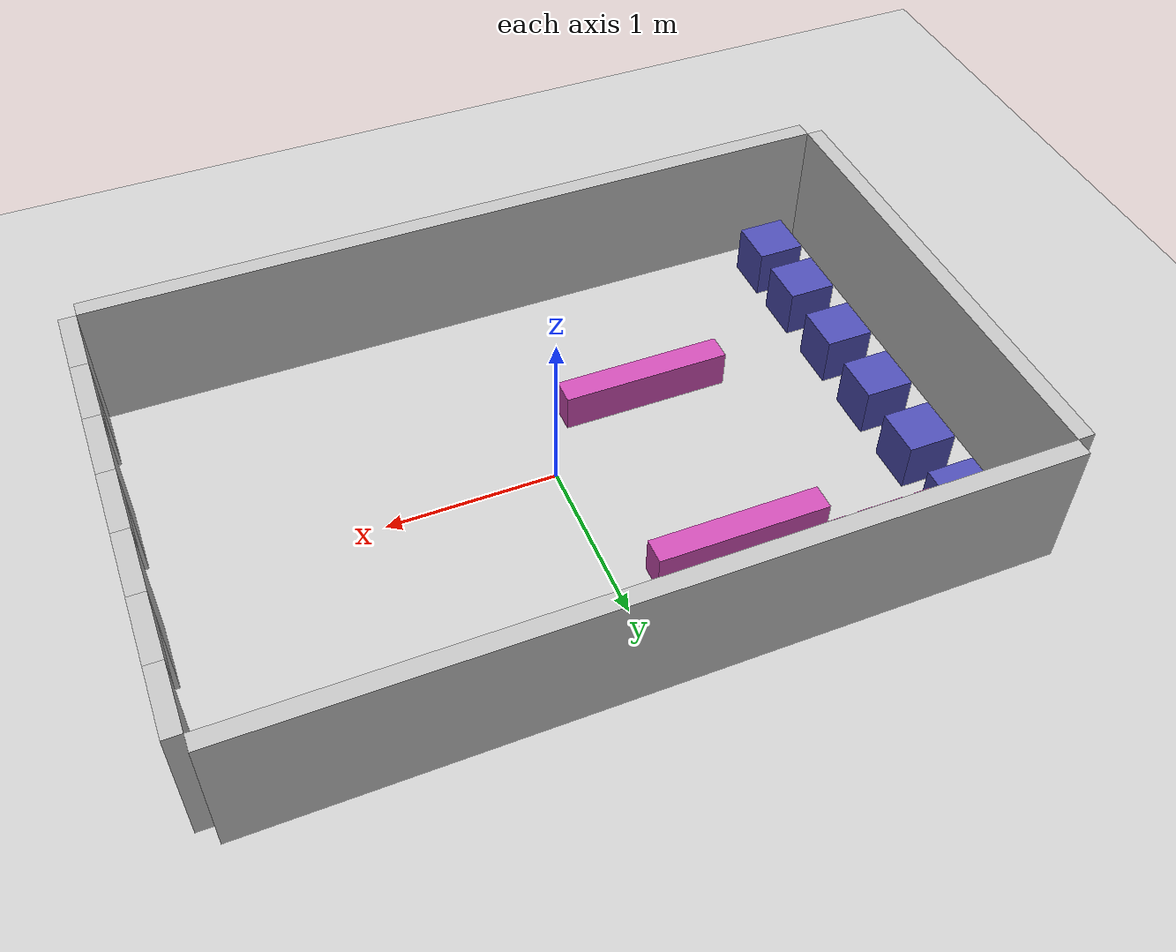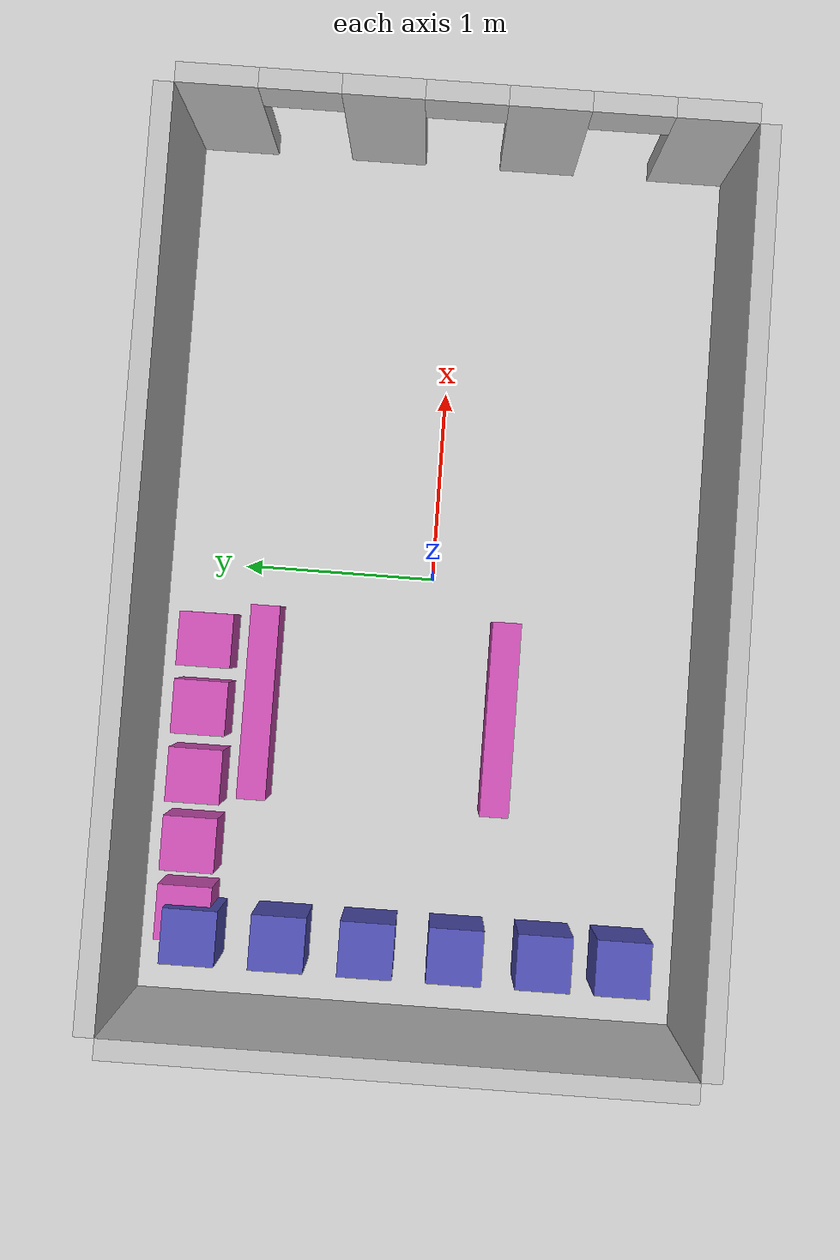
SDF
<sdf version="1.6">
 <world name="puzzlebot_world">
  <include><uri>model://ground_plane</uri></include>
  <include><uri>model://sun</uri></include>
  <physics type="ode">
   <max_step_size>0.005</max_step_size>
   <real_time_factor>1.0</real_time_factor>
   <real_time_update_rate>100</real_time_update_rate>
  </physics>
  <model name="wall_north">
   <static>true</static>
   <pose>0 1.45 0.4 0 0 0</pose>
   <link name="link">
    <collision name="c"><geometry><box><size>4.5 0.1 0.8</size></box></geometry></collision>
    <visual name="v">
     <geometry><box><size>4.5 0.1 0.8</size></box></geometry>
     <material><ambient>0.75 0.75 0.75 1</ambient></material>
    </visual>
   </link>
  </model>
  <model name="wall_south">
   <static>true</static>
   <pose>0 -1.45 0.4 0 0 0</pose>
   <link name="link">
    <collision name="c"><geometry><box><size>4.5 0.1 0.8</size></box></geometry></collision>
    <visual name="v">
     <geometry><box><size>4.5 0.1 0.8</size></box></geometry>
     <material><ambient>0.75 0.75 0.75 1</ambient></material>
    </visual>
   </link>
  </model>
  <model name="wall_west">
   <static>true</static>
   <pose>-2.30 0 0.4 0 0 0</pose>
   <link name="link">
    <collision name="c"><geometry><box><size>0.1 2.8 0.8</size></box></geometry></collision>
    <visual name="v">
     <geometry><box><size>0.1 2.8 0.8</size></box></geometry>
     <material><ambient>0.75 0.75 0.75 1</ambient></material>
    </visual>
   </link>
  </model>
  <model name="wall_east_seg1">
   <static>true</static>
   <pose>2.30 1.20 0.4 0 0 0</pose>
   <link name="link">
    <collision name="c"><geometry><box><size>0.1 0.4 0.8</size></box></geometry></collision>
    <visual name="v">
     <geometry><box><size>0.1 0.4 0.8</size></box></geometry>
     <material><ambient>0.75 0.75 0.75 1</ambient></material>
    </visual>
   </link>
  </model>
  <model name="wall_east_seg2">
   <static>true</static>
   <pose>2.30 0.40 0.4 0 0 0</pose>
   <link name="link">
    <collision name="c"><geometry><box><size>0.1 0.4 0.8</size></box></geometry></collision>
    <visual name="v">
     <geometry><box><size>0.1 0.4 0.8</size></box></geometry>
     <material><ambient>0.75 0.75 0.75 1</ambient></material>
    </visual>
   </link>
  </model>
  <model name="wall_east_seg3">
   <static>true</static>
   <pose>2.30 -0.40 0.4 0 0 0</pose>
   <link name="link">
    <collision name="c"><geometry><box><size>0.1 0.4 0.8</size></box></geometry></collision>
    <visual name="v">
     <geometry><box><size>0.1 0.4 0.8</size></box></geometry>
     <material><ambient>0.75 0.75 0.75 1</ambient></material>
    </visual>
   </link>
  </model>
  <model name="wall_east_seg4">
   <static>true</static>
   <pose>2.30 -1.20 0.4 0 0 0</pose>
   <link name="link">
    <collision name="c"><geometry><box><size>0.1 0.4 0.8</size></box></geometry></collision>
    <visual name="v">
     <geometry><box><size>0.1 0.4 0.8</size></box></geometry>
     <material><ambient>0.75 0.75 0.75 1</ambient></material>
    </visual>
   </link>
  </model>
  <model name="door_lintel_1">
   <static>true</static>
   <pose>2.30 0.80 0.70 0 0 0</pose>
   <link name="link">
    <collision name="c"><geometry><box><size>0.1 0.4 0.2</size></box></geometry></collision>
    <visual name="v">
     <geometry><box><size>0.1 0.4 0.2</size></box></geometry>
     <material><ambient>0.75 0.75 0.75 1</ambient></material>
    </visual>
   </link>
  </model>
  <model name="door_lintel_2">
   <static>true</static>
   <pose>2.30 0.00 0.70 0 0 0</pose>
   <link name="link">
    <collision name="c"><geometry><box><size>0.1 0.4 0.2</size></box></geometry></collision>
    <visual name="v">
     <geometry><box><size>0.1 0.4 0.2</size></box></geometry>
     <material><ambient>0.75 0.75 0.75 1</ambient></material>
    </visual>
   </link>
  </model>
  <model name="door_lintel_3">
   <static>true</static>
   <pose>2.30 -0.80 0.70 0 0 0</pose>
   <link name="link">
    <collision name="c"><geometry><box><size>0.1 0.4 0.2</size></box></geometry></collision>
    <visual name="v">
     <geometry><box><size>0.1 0.4 0.2</size></box></geometry>
     <material><ambient>0.75 0.75 0.75 1</ambient></material>
    </visual>
   </link>
  </model>
  <model name="block_west_a1">
   <static>true</static>
   <pose>-1.90  1.10 0.15 0 0 0</pose>
   <link name="link">
    <collision name="c"><geometry><box><size>0.28 0.28 0.30</size></box></geometry></collision>
    <visual name="v">
     <geometry><box><size>0.28 0.28 0.30</size></box></geometry>
     <material><ambient>0.3 0.3 0.7 1</ambient></material>
    </visual>
   </link>
  </model>
  <model name="block_west_a2">
   <static>true</static>
   <pose>-1.90  0.65 0.15 0 0 0</pose>
   <link name="link">
    <collision name="c"><geometry><box><size>0.28 0.28 0.30</size></box></geometry></collision>
    <visual name="v">
     <geometry><box><size>0.28 0.28 0.30</size></box></geometry>
     <material><ambient>0.3 0.3 0.7 1</ambient></material>
    </visual>
   </link>
  </model>
  <model name="block_west_a3">
   <static>true</static>
   <pose>-1.90  0.20 0.15 0 0 0</pose>
   <link name="link">
    <collision name="c"><geometry><box><size>0.28 0.28 0.30</size></box></geometry></collision>
    <visual name="v">
     <geometry><box><size>0.28 0.28 0.30</size></box></geometry>
     <material><ambient>0.3 0.3 0.7 1</ambient></material>
    </visual>
   </link>
  </model>
  <model name="block_west_a4">
   <static>true</static>
   <pose>-1.90 -0.25 0.15 0 0 0</pose>
   <link name="link">
    <collision name="c"><geometry><box><size>0.28 0.28 0.30</size></box></geometry></collision>
    <visual name="v">
     <geometry><box><size>0.28 0.28 0.30</size></box></geometry>
     <material><ambient>0.3 0.3 0.7 1</ambient></material>
    </visual>
   </link>
  </model>
  <model name="block_west_a5">
   <static>true</static>
   <pose>-1.90 -0.70 0.15 0 0 0</pose>
   <link name="link">
    <collision name="c"><geometry><box><size>0.28 0.28 0.30</size></box></geometry></collision>
    <visual name="v">
     <geometry><box><size>0.28 0.28 0.30</size></box></geometry>
     <material><ambient>0.3 0.3 0.7 1</ambient></material>
    </visual>
   </link>
  </model>
  <model name="block_west_a6">
   <static>true</static>
   <pose>-1.90 -1.10 0.15 0 0 0</pose>
   <link name="link">
    <collision name="c"><geometry><box><size>0.28 0.28 0.30</size></box></geometry></collision>
    <visual name="v">
     <geometry><box><size>0.28 0.28 0.30</size></box></geometry>
     <material><ambient>0.3 0.3 0.7 1</ambient></material>
    </visual>
   </link>
  </model>
  <model name="block_center_left_top">
   <static>true</static>
   <pose>-0.70 0.85 0.075 0 0 0</pose>
   <link name="link">
    <collision name="c"><geometry><box><size>1.0 0.15 0.30</size></box></geometry></collision>
    <visual name="v">
     <geometry><box><size>1.0 0.15 0.30</size></box></geometry>
     <material><ambient>0.8 0.3 0.7 1</ambient></material>
    </visual>
   </link>
  </model>
  <model name="block_center_left_bot">
   <static>true</static>
   <pose>-0.70 -0.40 0.075 0 0 0</pose>
   <link name="link">
    <collision name="c"><geometry><box><size>1.0 0.15 0.30</size></box></geometry></collision>
    <visual name="v">
     <geometry><box><size>1.0 0.15 0.30</size></box></geometry>
     <material><ambient>0.8 0.3 0.7 1</ambient></material>
    </visual>
   </link>
  </model>
  <model name="block_north_1">
   <static>true</static>
   <pose>-1.80 1.15 0.075 0 0 0</pose>
   <link name="link">
    <collision name="c"><geometry><box><size>0.28 0.28 0.30</size></box></geometry></collision>
    <visual name="v">
     <geometry><box><size>0.28 0.28 0.30</size></box></geometry>
     <material><ambient>0.8 0.3 0.7 1</ambient></material>
    </visual>
   </link>
  </model>
  <model name="block_north_2">
   <static>true</static>
   <pose>-1.45 1.15 0.075 0 0 0</pose>
   <link name="link">
    <collision name="c"><geometry><box><size>0.28 0.28 0.30</size></box></geometry></collision>
    <visual name="v">
     <geometry><box><size>0.28 0.28 0.30</size></box></geometry>
     <material><ambient>0.8 0.3 0.7 1</ambient></material>
    </visual>
   </link>
  </model>
  <model name="block_north_3">
   <static>true</static>
   <pose>-1.10 1.15 0.075 0 0 0</pose>
   <link name="link">
    <collision name="c"><geometry><box><size>0.28 0.28 0.30</size></box></geometry></collision>
    <visual name="v">
     <geometry><box><size>0.28 0.28 0.30</size></box></geometry>
     <material><ambient>0.8 0.3 0.7 1</ambient></material>
    </visual>
   </link>
  </model>
  <model name="block_north_4">
   <static>true</static>
   <pose>-0.75 1.15 0.075 0 0 0</pose>
   <link name="link">
    <collision name="c"><geometry><box><size>0.28 0.28 0.30</size></box></geometry></collision>
    <visual name="v">
     <geometry><box><size>0.28 0.28 0.30</size></box></geometry>
     <material><ambient>0.8 0.3 0.7 1</ambient></material>
    </visual>
   </link>
  </model>
  <model name="block_north_5">
   <static>true</static>
   <pose>-0.40 1.15 0.075 0 0 0</pose>
   <link name="link">
    <collision name="c"><geometry><box><size>0.28 0.28 0.30</size></box></geometry></collision>
    <visual name="v">
     <geometry><box><size>0.28 0.28 0.30</size></box></geometry>
     <material><ambient>0.8 0.3 0.7 1</ambient></material>
    </visual>
   </link>
  </model>
 </world>
</sdf>
